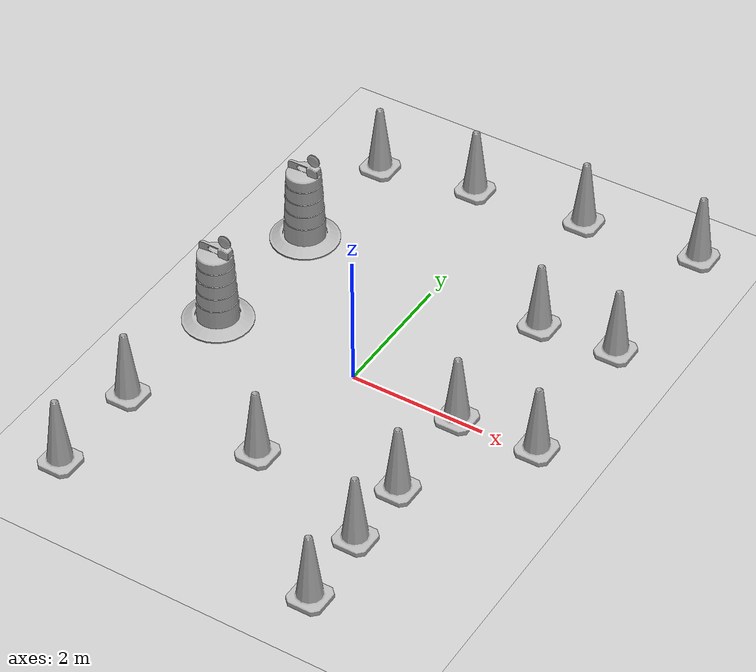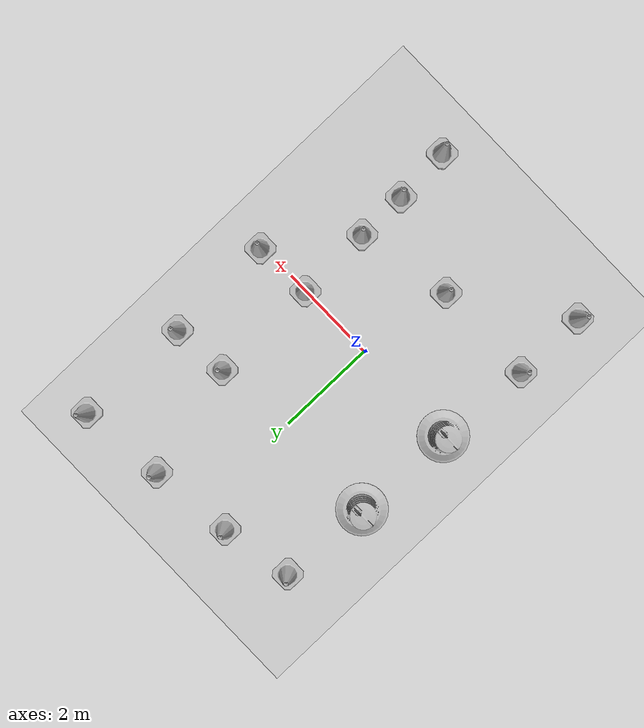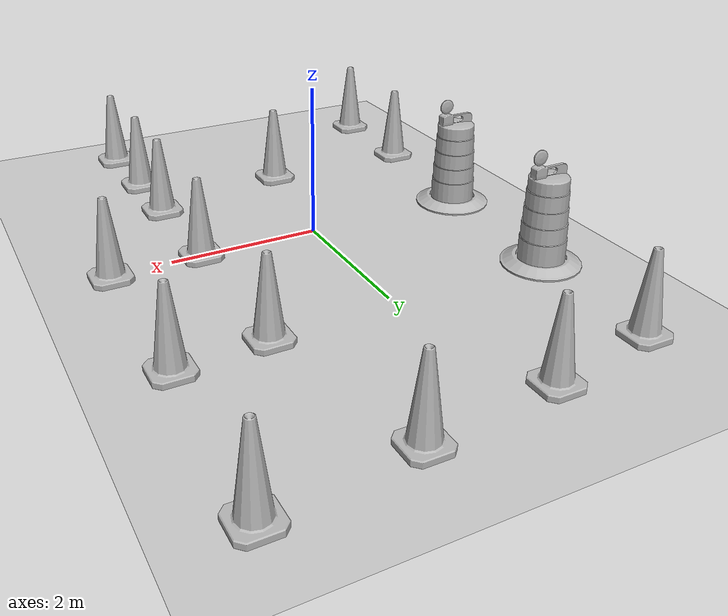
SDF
<sdf version="1.7">
 <world name="default">
  <light name="sun" type="directional">
   <pose>0 0 10 0 -0 0</pose>
   <diffuse>0.8 0.8 0.8 1</diffuse>
   <specular>0.2 0.2 0.2 1</specular>
   <attenuation>
    <range>1000</range>
    <constant>0.9</constant>
    <linear>0.01</linear>
    <quadratic>0.001</quadratic>
   </attenuation>
   <direction>-0.5 0.1 -0.9</direction>
   <spot><inner_angle>0</inner_angle><outer_angle>0</outer_angle><falloff>0</falloff></spot>
  </light>
  <model name="ground_plane">
   <static>1</static>
   <link name="link">
    <collision name="collision">
     <geometry><plane><normal>0 0 1</normal><size>100 100</size></plane></geometry>
     <surface>
      <contact><collide_bitmask>65535</collide_bitmask></contact>
      <friction><ode><mu>100</mu><mu2>50</mu2></ode></friction>
     </surface>
    </collision>
    <visual name="visual">
     <cast_shadows>0</cast_shadows>
     <geometry><plane><normal>0 0 1</normal><size>100 100</size></plane></geometry>
     <material>
      <script><uri>file://media/materials/scripts/gazebo.material</uri><name>Gazebo/Grey</name></script>
     </material>
    </visual>
   </link>
  </model>
  <gravity>0 0 -9.8</gravity>
  <magnetic_field>6e-06 2.3e-05 -4.2e-05</magnetic_field>
  <atmosphere type="adiabatic"/>
  <physics type="ode">
   <max_step_size>0.001</max_step_size>
   <real_time_factor>1</real_time_factor>
   <real_time_update_rate>1000</real_time_update_rate>
  </physics>
  <scene><ambient>0.4 0.4 0.4 1</ambient><background>0.7 0.7 0.7 1</background><shadows>1</shadows></scene>
  <spherical_coordinates>
   <surface_model>EARTH_WGS84</surface_model>
   <latitude_deg>0</latitude_deg>
   <longitude_deg>0</longitude_deg>
   <elevation>0</elevation>
   <heading_deg>0</heading_deg>
  </spherical_coordinates>
  <model name="Construction Barrel">
   <link name="link">
    <inertial>
     <pose>0 0 0.4 0 -0 0</pose>
     <mass>500</mass>
     <inertia><ixx>51.2096</ixx><iyy>51.2096</iyy><izz>25</izz><ixy>0</ixy><ixz>0</ixz><iyz>0</iyz></inertia>
    </inertial>
    <collision name="collision">
     <geometry><mesh><uri>model://construction_barrel/meshes/construction_barrel.dae</uri></mesh></geometry>
    </collision>
    <visual name="visual">
     <geometry><mesh><uri>model://construction_barrel/meshes/construction_barrel.dae</uri></mesh></geometry>
    </visual>
   </link>
   <pose>-2.21621 0.020567 -1e-06 3e-06 -2e-06 -2.7e-05</pose>
  </model>
  <model name="Construction Barrel_0">
   <link name="link">
    <inertial>
     <pose>0 0 0.4 0 -0 0</pose>
     <mass>500</mass>
     <inertia><ixx>51.2096</ixx><iyy>51.2096</iyy><izz>25</izz><ixy>0</ixy><ixz>0</ixz><iyz>0</iyz></inertia>
    </inertial>
    <collision name="collision">
     <geometry><mesh><uri>model://construction_barrel/meshes/construction_barrel.dae</uri></mesh></geometry>
    </collision>
    <visual name="visual">
     <geometry><mesh><uri>model://construction_barrel/meshes/construction_barrel.dae</uri></mesh></geometry>
    </visual>
   </link>
   <pose>-2.15237 2.11146 -3e-06 -0 -1.2e-05 -2.5e-05</pose>
  </model>
  <model name="Construction Cone">
   <link name="link">
    <collision name="collision">
     <geometry>
      <mesh><scale>10 10 10</scale><uri>model://construction_cone/meshes/construction_cone.dae</uri></mesh>
     </geometry>
    </collision>
    <visual name="visual">
     <geometry>
      <mesh><scale>10 10 10</scale><uri>model://construction_cone/meshes/construction_cone.dae</uri></mesh>
     </geometry>
    </visual>
    <inertial>
     <inertia><ixx>1</ixx><ixy>0</ixy><ixz>0</ixz><iyy>1</iyy><iyz>0</iyz><izz>1</izz></inertia>
     <mass>1</mass>
    </inertial>
   </link>
   <pose>1.60612 0.013213 -0 1e-06 -0 0</pose>
  </model>
  <model name="Construction Cone_clone">
   <link name="link">
    <collision name="collision">
     <geometry>
      <mesh><scale>10 10 10</scale><uri>model://construction_cone/meshes/construction_cone.dae</uri></mesh>
     </geometry>
    </collision>
    <visual name="visual">
     <geometry>
      <mesh><scale>10 10 10</scale><uri>model://construction_cone/meshes/construction_cone.dae</uri></mesh>
     </geometry>
    </visual>
    <inertial>
     <inertia><ixx>1</ixx><ixy>0</ixy><ixz>0</ixz><iyy>1</iyy><iyz>0</iyz><izz>1</izz></inertia>
     <mass>1</mass>
    </inertial>
   </link>
   <pose>2.78966 0.065132 -1e-05 -0 -0 -0</pose>
  </model>
  <model name="Construction Cone_clone_0">
   <link name="link">
    <collision name="collision">
     <geometry>
      <mesh><scale>10 10 10</scale><uri>model://construction_cone/meshes/construction_cone.dae</uri></mesh>
     </geometry>
    </collision>
    <visual name="visual">
     <geometry>
      <mesh><scale>10 10 10</scale><uri>model://construction_cone/meshes/construction_cone.dae</uri></mesh>
     </geometry>
    </visual>
    <inertial>
     <inertia><ixx>1</ixx><ixy>0</ixy><ixz>0</ixz><iyy>1</iyy><iyz>0</iyz><izz>1</izz></inertia>
     <mass>1</mass>
    </inertial>
   </link>
   <pose>1.61462 2.19654 0 -0 -0 -0</pose>
  </model>
  <model name="Construction Cone_clone_1">
   <link name="link">
    <collision name="collision">
     <geometry>
      <mesh><scale>10 10 10</scale><uri>model://construction_cone/meshes/construction_cone.dae</uri></mesh>
     </geometry>
    </collision>
    <visual name="visual">
     <geometry>
      <mesh><scale>10 10 10</scale><uri>model://construction_cone/meshes/construction_cone.dae</uri></mesh>
     </geometry>
    </visual>
    <inertial>
     <inertia><ixx>1</ixx><ixy>0</ixy><ixz>0</ixz><iyy>1</iyy><iyz>0</iyz><izz>1</izz></inertia>
     <mass>1</mass>
    </inertial>
   </link>
   <pose>2.75511 2.28835 -0 0 -1e-06 0</pose>
  </model>
  <model name="Construction Cone_clone_2">
   <link name="link">
    <collision name="collision">
     <geometry>
      <mesh><scale>10 10 10</scale><uri>model://construction_cone/meshes/construction_cone.dae</uri></mesh>
     </geometry>
    </collision>
    <visual name="visual">
     <geometry>
      <mesh><scale>10 10 10</scale><uri>model://construction_cone/meshes/construction_cone.dae</uri></mesh>
     </geometry>
    </visual>
    <inertial>
     <inertia><ixx>1</ixx><ixy>0</ixy><ixz>0</ixz><iyy>1</iyy><iyz>0</iyz><izz>1</izz></inertia>
     <mass>1</mass>
    </inertial>
   </link>
   <pose>-2.06706 3.98649 -0 0 -1e-06 0</pose>
  </model>
  <model name="Construction Cone_clone_3">
   <link name="link">
    <collision name="collision">
     <geometry>
      <mesh><scale>10 10 10</scale><uri>model://construction_cone/meshes/construction_cone.dae</uri></mesh>
     </geometry>
    </collision>
    <visual name="visual">
     <geometry>
      <mesh><scale>10 10 10</scale><uri>model://construction_cone/meshes/construction_cone.dae</uri></mesh>
     </geometry>
    </visual>
    <inertial>
     <inertia><ixx>1</ixx><ixy>0</ixy><ixz>0</ixz><iyy>1</iyy><iyz>0</iyz><izz>1</izz></inertia>
     <mass>1</mass>
    </inertial>
   </link>
   <pose>-0.622775 4.26118 -0 0 -1e-06 0</pose>
  </model>
  <model name="Construction Cone_clone_4">
   <link name="link">
    <collision name="collision">
     <geometry>
      <mesh><scale>10 10 10</scale><uri>model://construction_cone/meshes/construction_cone.dae</uri></mesh>
     </geometry>
    </collision>
    <visual name="visual">
     <geometry>
      <mesh><scale>10 10 10</scale><uri>model://construction_cone/meshes/construction_cone.dae</uri></mesh>
     </geometry>
    </visual>
    <inertial>
     <inertia><ixx>1</ixx><ixy>0</ixy><ixz>0</ixz><iyy>1</iyy><iyz>0</iyz><izz>1</izz></inertia>
     <mass>1</mass>
    </inertial>
   </link>
   <pose>1.06581 4.45073 -0 0 -0 0</pose>
  </model>
  <model name="Construction Cone_clone_5">
   <link name="link">
    <collision name="collision">
     <geometry>
      <mesh><scale>10 10 10</scale><uri>model://construction_cone/meshes/construction_cone.dae</uri></mesh>
     </geometry>
    </collision>
    <visual name="visual">
     <geometry>
      <mesh><scale>10 10 10</scale><uri>model://construction_cone/meshes/construction_cone.dae</uri></mesh>
     </geometry>
    </visual>
    <inertial>
     <inertia><ixx>1</ixx><ixy>0</ixy><ixz>0</ixz><iyy>1</iyy><iyz>0</iyz><izz>1</izz></inertia>
     <mass>1</mass>
    </inertial>
   </link>
   <pose>2.81285 4.62768 0 -0 -0 -0</pose>
  </model>
  <model name="Construction Cone_clone_6">
   <link name="link">
    <collision name="collision">
     <geometry>
      <mesh><scale>10 10 10</scale><uri>model://construction_cone/meshes/construction_cone.dae</uri></mesh>
     </geometry>
    </collision>
    <visual name="visual">
     <geometry>
      <mesh><scale>10 10 10</scale><uri>model://construction_cone/meshes/construction_cone.dae</uri></mesh>
     </geometry>
    </visual>
    <inertial>
     <inertia><ixx>1</ixx><ixy>0</ixy><ixz>0</ixz><iyy>1</iyy><iyz>0</iyz><izz>1</izz></inertia>
     <mass>1</mass>
    </inertial>
   </link>
   <pose>-2.35919 -1.89545 -1e-05 0 -0 0</pose>
  </model>
  <model name="Construction Cone_clone_7">
   <link name="link">
    <collision name="collision">
     <geometry>
      <mesh><scale>10 10 10</scale><uri>model://construction_cone/meshes/construction_cone.dae</uri></mesh>
     </geometry>
    </collision>
    <visual name="visual">
     <geometry>
      <mesh><scale>10 10 10</scale><uri>model://construction_cone/meshes/construction_cone.dae</uri></mesh>
     </geometry>
    </visual>
    <inertial>
     <inertia><ixx>1</ixx><ixy>0</ixy><ixz>0</ixz><iyy>1</iyy><iyz>0</iyz><izz>1</izz></inertia>
     <mass>1</mass>
    </inertial>
   </link>
   <pose>-2.3675 -3.38611 -0 0 -0 0</pose>
  </model>
  <model name="Construction Cone_clone_8">
   <link name="link">
    <collision name="collision">
     <geometry>
      <mesh><scale>10 10 10</scale><uri>model://construction_cone/meshes/construction_cone.dae</uri></mesh>
     </geometry>
    </collision>
    <visual name="visual">
     <geometry>
      <mesh><scale>10 10 10</scale><uri>model://construction_cone/meshes/construction_cone.dae</uri></mesh>
     </geometry>
    </visual>
    <inertial>
     <inertia><ixx>1</ixx><ixy>0</ixy><ixz>0</ixz><iyy>1</iyy><iyz>0</iyz><izz>1</izz></inertia>
     <mass>1</mass>
    </inertial>
   </link>
   <pose>1.63487 -1.51741 -0 0 -1e-06 0</pose>
  </model>
  <model name="Construction Cone_clone_9">
   <link name="link">
    <collision name="collision">
     <geometry>
      <mesh><scale>10 10 10</scale><uri>model://construction_cone/meshes/construction_cone.dae</uri></mesh>
     </geometry>
    </collision>
    <visual name="visual">
     <geometry>
      <mesh><scale>10 10 10</scale><uri>model://construction_cone/meshes/construction_cone.dae</uri></mesh>
     </geometry>
    </visual>
    <inertial>
     <inertia><ixx>1</ixx><ixy>0</ixy><ixz>0</ixz><iyy>1</iyy><iyz>0</iyz><izz>1</izz></inertia>
     <mass>1</mass>
    </inertial>
   </link>
   <pose>1.64167 -2.55081 -0 0 -1e-06 0</pose>
  </model>
  <model name="Construction Cone_clone_10">
   <link name="link">
    <collision name="collision">
     <geometry>
      <mesh><scale>10 10 10</scale><uri>model://construction_cone/meshes/construction_cone.dae</uri></mesh>
     </geometry>
    </collision>
    <visual name="visual">
     <geometry>
      <mesh><scale>10 10 10</scale><uri>model://construction_cone/meshes/construction_cone.dae</uri></mesh>
     </geometry>
    </visual>
    <inertial>
     <inertia><ixx>1</ixx><ixy>0</ixy><ixz>0</ixz><iyy>1</iyy><iyz>0</iyz><izz>1</izz></inertia>
     <mass>1</mass>
    </inertial>
   </link>
   <pose>1.70139 -3.69421 -0 0 -0 0</pose>
  </model>
  <model name="Construction Cone_clone_11">
   <link name="link">
    <collision name="collision">
     <geometry>
      <mesh><scale>10 10 10</scale><uri>model://construction_cone/meshes/construction_cone.dae</uri></mesh>
     </geometry>
    </collision>
    <visual name="visual">
     <geometry>
      <mesh><scale>10 10 10</scale><uri>model://construction_cone/meshes/construction_cone.dae</uri></mesh>
     </geometry>
    </visual>
    <inertial>
     <inertia><ixx>1</ixx><ixy>0</ixy><ixz>0</ixz><iyy>1</iyy><iyz>0</iyz><izz>1</izz></inertia>
     <mass>1</mass>
    </inertial>
   </link>
   <pose>-0.272264 -1.91108 -1e-05 0 -0 0</pose>
  </model>
 </world>
</sdf>
